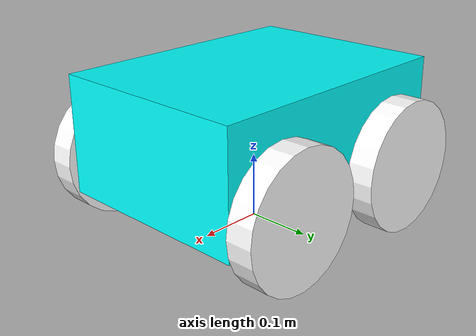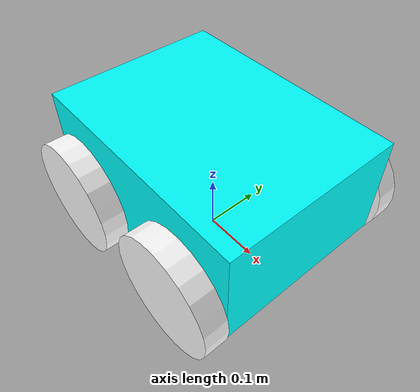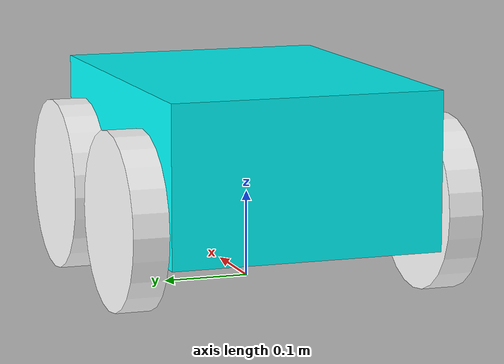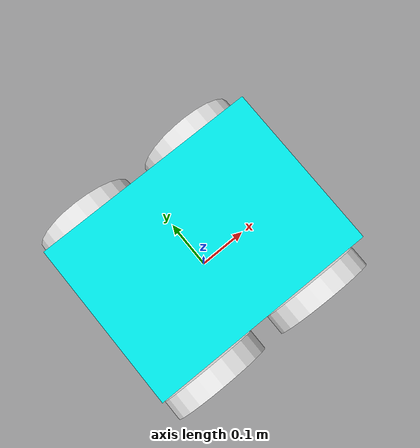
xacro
<?xml version="1.0"?>
<robot xmlns:xacro="http://www.ros.org/wiki/xacro">

  <!-- Robotaren balio konstanteak -->
  <xacro:property name="oinarri_zabalera" value="0.31"/>
  <xacro:property name="oinarri_luzera" value="0.42"/>
  <xacro:property name="oinarri_altuera" value="0.18"/>

  <xacro:property name="gurpil_erradioa" value="0.10"/>
  <xacro:property name="gurpil_zabalera" value="0.04"/>
  <xacro:property name="wheel_ygap" value="0.025"/>
  <xacro:property name="wheel_zoff" value="0.05"/>
  <xacro:property name="wheel_xoff" value="0.12"/>

  <xacro:property name="gurpil_marruskadura" value="0.8"/>

  <!-- Definitu propietate inertzialak  -->
  <xacro:macro name="kutxa_inerzia" params="m w h d">
    <inertial>
      <origin xyz="0 0 0" rpy="${pi/2} 0 ${pi/2}"/>
      <mass value="${m}"/>
      <inertia ixx="${(m/12) * (h*h + d*d)}" ixy="0.0" ixz="0.0" iyy="${(m/12) * (w*w + d*d)}" iyz="0.0" izz="${(m/12) * (w*w + h*h)}"/>
    </inertial>
  </xacro:macro>

  <xacro:macro name="zilindro_inertzia" params="m r h">
    <inertial>
      <origin xyz="0 0 0" rpy="${pi/2} 0 0" />
      <mass value="${m}"/>
      <inertia ixx="${(m/12) * (3*r*r + h*h)}" ixy = "0" ixz = "0" iyy="${(m/12) * (3*r*r + h*h)}" iyz = "0" izz="${(m/2) * (r*r)}"/>
    </inertial>
  </xacro:macro>

  <!-- Robotaren basea -->
  <link name="base_link">
    <visual>
      <geometry>
        <box size="${oinarri_luzera} ${oinarri_zabalera} ${oinarri_altuera}"/>
      </geometry>
      <material name="Cyan">
        <color rgba="0 1.0 1.0 1.0"/>
      </material>
    </visual>
    <collision>
      <geometry>
        <box size="${oinarri_luzera} ${oinarri_zabalera} ${oinarri_altuera}"/>
      </geometry>
    </collision>

    <xacro:kutxa_inerzia m="0.4" w="${oinarri_zabalera}" d="${oinarri_luzera}" h="${oinarri_altuera}"/>
  </link>

  <!-- Robotaren Footprinta (itzala) -->
  <link name="base_footprint"/>

  <joint name="base_joint" type="fixed">
    <parent link="base_footprint"/>
    <child link="base_link"/>
    <origin xyz="0.0 0.0 ${(gurpil_erradioa+wheel_zoff)}" rpy="0 0 0"/>
  </joint>

  <!-- Atzeko gurpilak -->
  <!-- Ez dira ackermanak -->
  <xacro:macro name="Atzeko_gurpilak" params="aurrizkia x_norantza y_norantza">
    <link name="${aurrizkia}_link">
      <visual>
        <origin xyz="0 0 0" rpy="${pi/2} 0 0"/>
        <geometry>
            <cylinder radius="${gurpil_erradioa}" length="${gurpil_zabalera}"/>
        </geometry>
        <material name="txuria">
          <color rgba="1 1 1 1"/>
        </material>
      </visual>

      <collision>
        <origin xyz="0 0 0" rpy="${pi/2} 0 0"/>
        <geometry>
          <cylinder radius="${gurpil_erradioa}" length="${gurpil_zabalera}"/>
        </geometry>
      </collision>

      <xacro:zilindro_inertzia m="0.1" r="${gurpil_erradioa}" h="${gurpil_zabalera}"/>
    </link>
    <joint name="${aurrizkia}_joint" type="continuous">
      <parent link="base_link"/>
      <child link="${aurrizkia}_link"/>
      <origin xyz="${x_norantza*wheel_xoff} ${y_norantza*(oinarri_zabalera/2+wheel_ygap)} ${-wheel_zoff}" rpy="0 0 0"/>
      <axis xyz="0 1 0"/>
    </joint>
  </xacro:macro>

  <xacro:Atzeko_gurpilak aurrizkia="atzekoezk_gurp" x_norantza="-1" y_norantza="1" />
  <xacro:Atzeko_gurpilak aurrizkia="atzekoesk_gurp" x_norantza="-1" y_norantza="-1" />

  <!-- Aurreko gurpilak -->
  <!-- Ackermann-ak-->
  <xacro:macro name="Aurreko_gurpila" params="aurrizkia2 x_norantza2 y_norantza2">
    <link name="${aurrizkia2}_link">
      <visual>
        <origin xyz="0 0 0" rpy="${pi/2} 0 0"/>
        <geometry>
            <cylinder radius="${gurpil_erradioa}" length="${gurpil_zabalera}"/>
        </geometry>
        <material name="txuria">
          <color rgba="1 1 1 1"/>
        </material>
      </visual>

      <collision>
        <origin xyz="0 0 0" rpy="${pi/2} 0 0"/>
        <geometry>
          <cylinder radius="${gurpil_erradioa}" length="${gurpil_zabalera}"/>
        </geometry>
      </collision>

      <xacro:zilindro_inertzia m="0.1" r="${gurpil_erradioa}" h="${gurpil_zabalera}"/>
    </link>

  </xacro:macro>

  <xacro:Aurreko_gurpila aurrizkia2="aurrekoezk_gurp" x_norantza2="1" y_norantza2="1" />
  <xacro:Aurreko_gurpila aurrizkia2="aurrekoesk_gurp" x_norantza2="1" y_norantza2="-1" />

  <joint name="aurrekoezk_gurp_joint" type="continuous">
    <parent link="aurrekoezk_gurp_steer"/>
    <child link="aurrekoezk_gurp_link"/>
    <origin xyz="0 0 0" rpy="0 0 0"/>
    <axis xyz="0 1 0"/>
  </joint>
  <joint name="aurrekoesk_gurp_joint" type="continuous">
    <parent link="aurrekoesk_gurp_steer"/>
    <child link="aurrekoesk_gurp_link"/>
    <origin xyz="0 0 0" rpy="0 0 0"/>
    <axis xyz="0 1 0"/>
  </joint>

  <link name="aurrekoezk_gurp_steer">
    <visual>
      <geometry>
        <cylinder length="0.01" radius="0.01"/>
      </geometry>
      <material name="black">
        <color rgba="0 0 0 1"/>
      </material>
    </visual>
    <collision>
      <geometry>
        <cylinder length="0.01" radius="0.01"/>
      </geometry>
    </collision>
    <inertial>
      <mass value="0.1"/>
      <inertia ixx="5.1458e-5" iyy="5.1458e-5" izz="6.125e-5"
               ixy="0" ixz="0" iyz="0"/>
    </inertial>
  </link>

  <link name="aurrekoesk_gurp_steer">
    <visual>
      <geometry>
        <cylinder length="0.01" radius="0.01"/>
      </geometry>
      <material name="black">
        <color rgba="0 0 0 1"/>
      </material>
    </visual>
    <collision>
      <geometry>
        <cylinder length="0.01" radius="0.01"/>
      </geometry>
    </collision>
    <inertial>
      <mass value="0.1"/>
      <inertia ixx="5.1458e-5" iyy="5.1458e-5" izz="6.125e-5"
               ixy="0" ixz="0" iyz="0"/>
    </inertial>
  </link>

  <joint name="aurrekoezk_gurp_steer_joint" type="revolute">
    <limit lower="-1" upper="1" effort="1" velocity="5"/>
    <axis xyz="0 0 1"/>
    <parent link="base_link"/>
    <child link="aurrekoezk_gurp_steer"/>
    <origin xyz="${wheel_xoff} ${(oinarri_zabalera/2+wheel_ygap)} ${-wheel_zoff}" rpy="0 0 0"/>
  </joint>

  <joint name="aurrekoesk_gurp_steer_joint" type="revolute">
    <limit lower="-1" upper="1" effort="1" velocity="5"/>
    <axis xyz="0 0 1"/>
    <parent link="base_link"/>
    <child link="aurrekoesk_gurp_steer"/>
    <origin xyz="${wheel_xoff} ${-1*(oinarri_zabalera/2+wheel_ygap)} ${-wheel_zoff}" rpy="0 0 0"/>
  </joint>

</robot>
